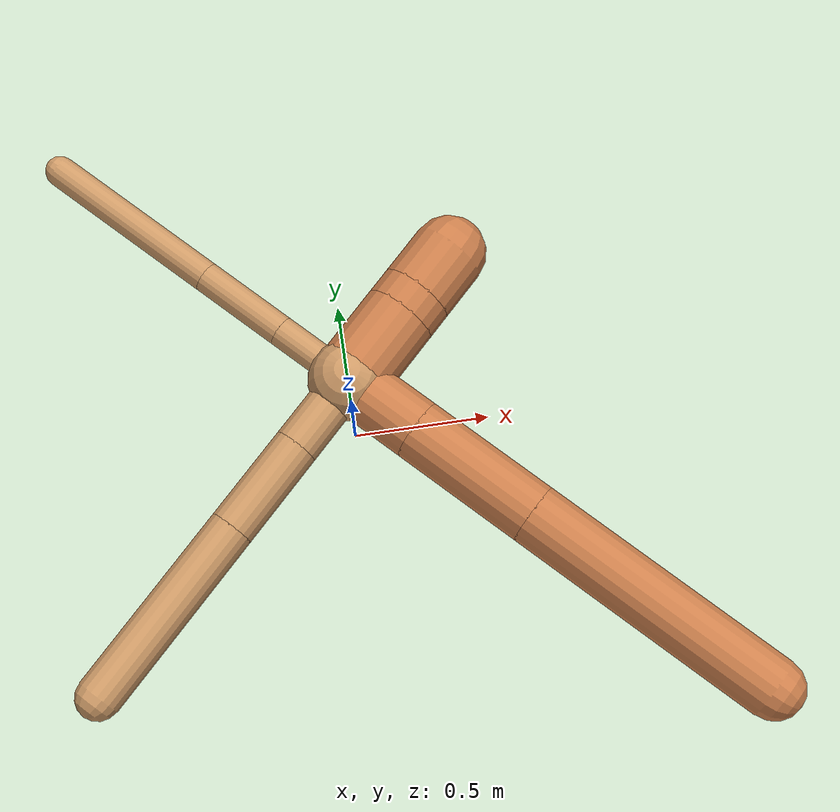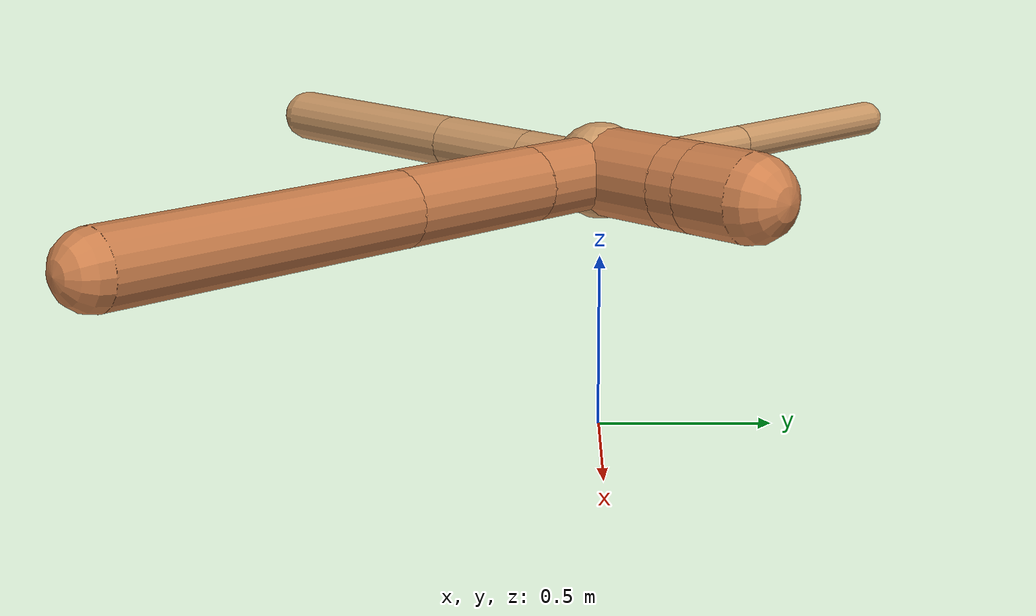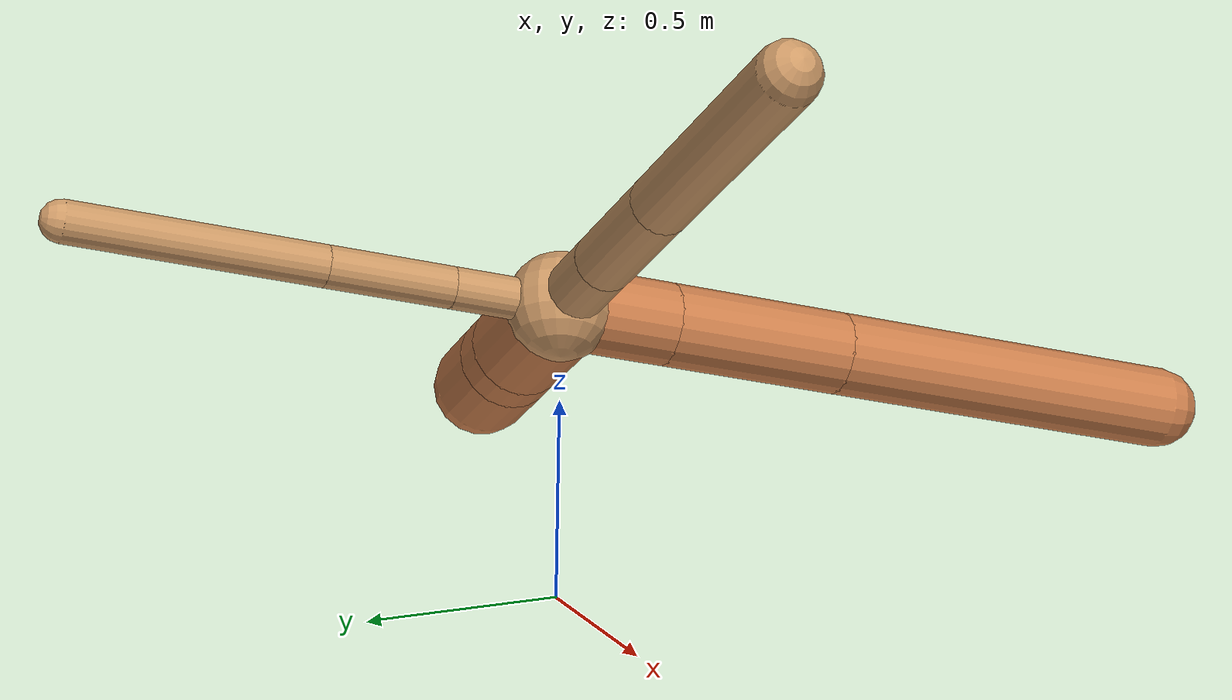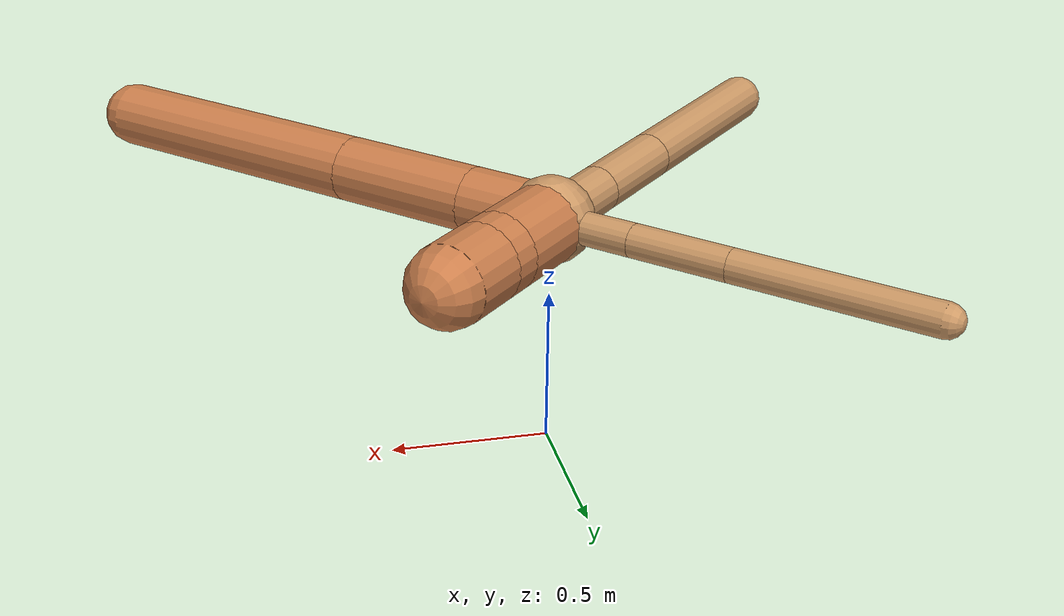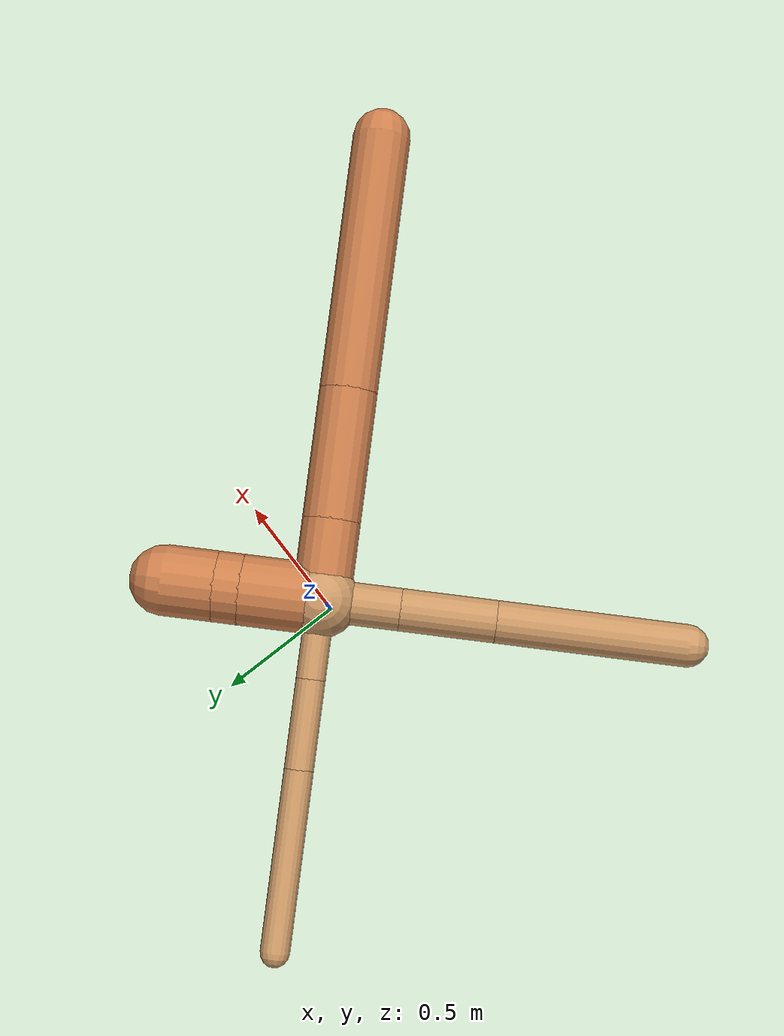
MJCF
<?xml version="1.0" ?>
<mujoco model="ant">

	<compiler angle="degree" coordinate="local" inertiafromgeom="true"/>

	<option integrator="RK4" timestep="0.01"/>

	<custom>

		<numeric data="0.0 0.0 0.55 1.0 0.0 0.0 0.0 0.0 1.0 0.0 -1.0 0.0 -1.0 0.0 1.0" name="init_qpos"/>

	</custom>

	<default>

		<joint armature="1" damping="1" limited="true"/>

		<geom conaffinity="0" condim="3" density="5.0" friction="1.5 0.1 0.1" margin="0.01" rgba="0.8 0.6 0.4 1"/>

	</default>

	<worldbody>

		<body name="torso" pos="0 0 0.75">

			<geom name="torso_geom" pos="0 0 0" size="0.1365399675090973" type="sphere"/>

			<!--joint armature="0" damping="0" limited="false" margin="0.01" name="root" pos="0 0 0" type="free"/-->

			<body name="front_left_leg" pos="0 0 0">

				<geom fromto="0 0 0 0.2 0.2 0" name="aux_1_geom" size="0.12752765140050829" type="capsule" rgba=".8 .5 .3 1"/>

				<body name="aux_1" pos="0.2 0.2 0">

					<joint axis="0 0 1" name="hip_1" pos="0.0 0.0 0.0" range="-40 40" type="hinge"/>

					<geom fromto="0 0 0 0.06450648419831546 0.06450648419831546 0" name="left_leg_geom" size="0.12752765140050829" type="capsule" rgba=".8 .5 .3 1"/>

					<body pos="0.06450648419831546 0.06450648419831546 0" name="front_left_foot">

						<joint axis="-1 1 0" name="ankle_1" pos="0.0 0.0 0.0" range="30 100" type="hinge"/>

						<geom fromto="0 0 0 0.12901296839663093 0.12901296839663093 0" name="left_ankle_geom" size="0.12752765140050829" type="capsule" rgba=".8 .5 .3 1"/>

					</body>

				</body>

			</body>

			<body name="front_right_leg" pos="0 0 0">

				<geom fromto="0 0 0 -0.2 0.2 0" name="aux_2_geom" size="0.05233106020451552" type="capsule"/>

				<body name="aux_2" pos="-0.2 0.2 0">

					<joint axis="0 0 1" name="hip_2" pos="0.0 0.0 0.0" range="-40 40" type="hinge"/>

					<geom fromto="0 0 0 -0.22431416692595074 0.22431416692595074 0" name="right_leg_geom" size="0.05233106020451552" type="capsule"/>

					<body pos="-0.22431416692595074 0.22431416692595074 0" name="front_right_foot">

						<joint axis="1 1 0" name="ankle_2" pos="0.0 0.0 0.0" range="-100 -30" type="hinge"/>

						<geom fromto="0 0 0 -0.4486283338519015 0.4486283338519015 0" name="right_ankle_geom" size="0.05233106020451552" type="capsule"/>

					</body>

				</body>

			</body>

			<body name="left_back_leg" pos="0 0 0">

				<geom fromto="0 0 0 -0.2 -0.2 0" name="aux_3_geom" size="0.0764864496319872" type="capsule"/>

				<body name="aux_3" pos="-0.2 -0.2 0">

					<joint axis="0 0 1" name="hip_3" pos="0.0 0.0 0.0" range="-40 40" type="hinge"/>

					<geom fromto="0 0 0 -0.24014443751188433 -0.24014443751188433 0" name="back_leg_geom" size="0.0764864496319872" type="capsule"/>

					<body pos="-0.24014443751188433 -0.24014443751188433 0" name="left_back_foot">

						<joint axis="-1 1 0" name="ankle_3" pos="0.0 0.0 0.0" range="-100 -30" type="hinge"/>

						<geom fromto="0 0 0 -0.48028887502376866 -0.48028887502376866 0" name="third_ankle_geom" size="0.0764864496319872" type="capsule"/>

					</body>

				</body>

			</body>

			<body name="right_back_leg" pos="0 0 0">

				<geom fromto="0 0 0 0.2 -0.2 0" name="aux_4_geom" size="0.10449483729672097" type="capsule" rgba=".8 .5 .3 1"/>

				<body name="aux_4" pos="0.2 -0.2 0">

					<joint axis="0 0 1" name="hip_4" pos="0.0 0.0 0.0" range="-40 40" type="hinge"/>

					<geom fromto="0 0 0 0.3319139585877719 -0.3319139585877719 0" name="rightback_leg_geom" size="0.10449483729672097" type="capsule" rgba=".8 .5 .3 1"/>

					<body pos="0.3319139585877719 -0.3319139585877719 0" name="right_back_foot">

						<joint axis="1 1 0" name="ankle_4" pos="0.0 0.0 0.0" range="30 100" type="hinge"/>

						<geom fromto="0 0 0 0.6638279171755438 -0.6638279171755438 0" name="fourth_ankle_geom" size="0.10449483729672097" type="capsule" rgba=".8 .5 .3 1"/>

					</body>

				</body>

			</body>

		</body>

	</worldbody>

	<actuator>

		<motor ctrllimited="true" ctrlrange="-1.0 1.0" joint="hip_4" gear="150"/>

		<motor ctrllimited="true" ctrlrange="-1.0 1.0" joint="ankle_4" gear="150"/>

		<motor ctrllimited="true" ctrlrange="-1.0 1.0" joint="hip_1" gear="150"/>

		<motor ctrllimited="true" ctrlrange="-1.0 1.0" joint="ankle_1" gear="150"/>

		<motor ctrllimited="true" ctrlrange="-1.0 1.0" joint="hip_2" gear="150"/>

		<motor ctrllimited="true" ctrlrange="-1.0 1.0" joint="ankle_2" gear="150"/>

		<motor ctrllimited="true" ctrlrange="-1.0 1.0" joint="hip_3" gear="150"/>

		<motor ctrllimited="true" ctrlrange="-1.0 1.0" joint="ankle_3" gear="150"/>

	</actuator>

</mujoco>
